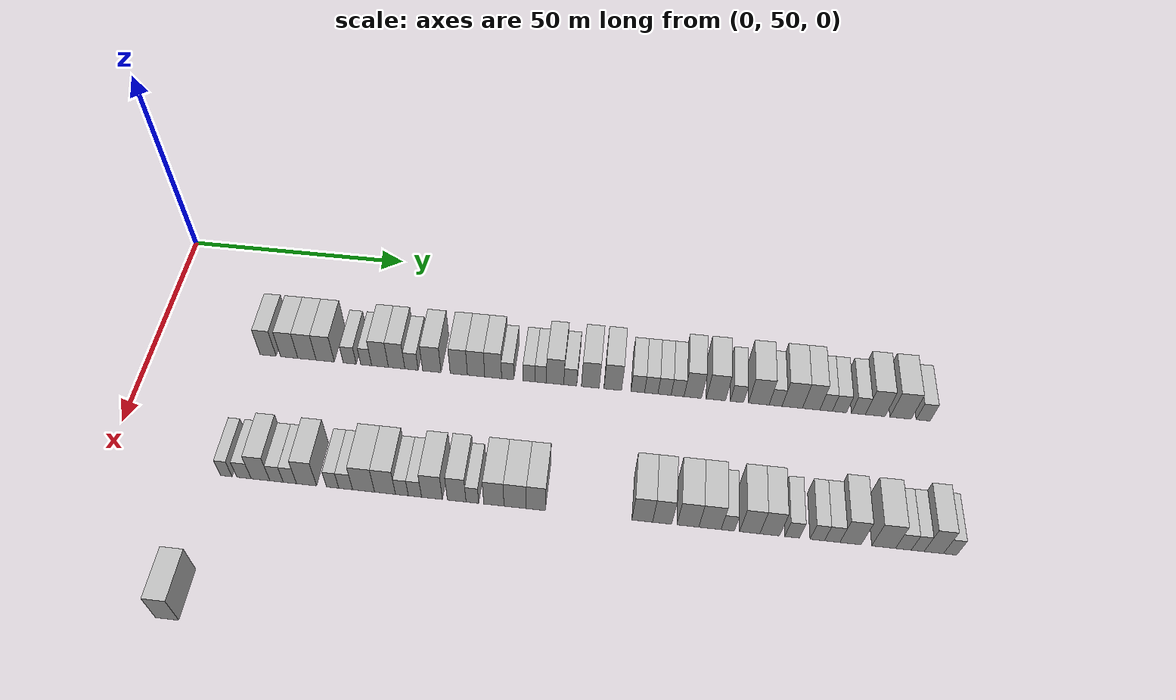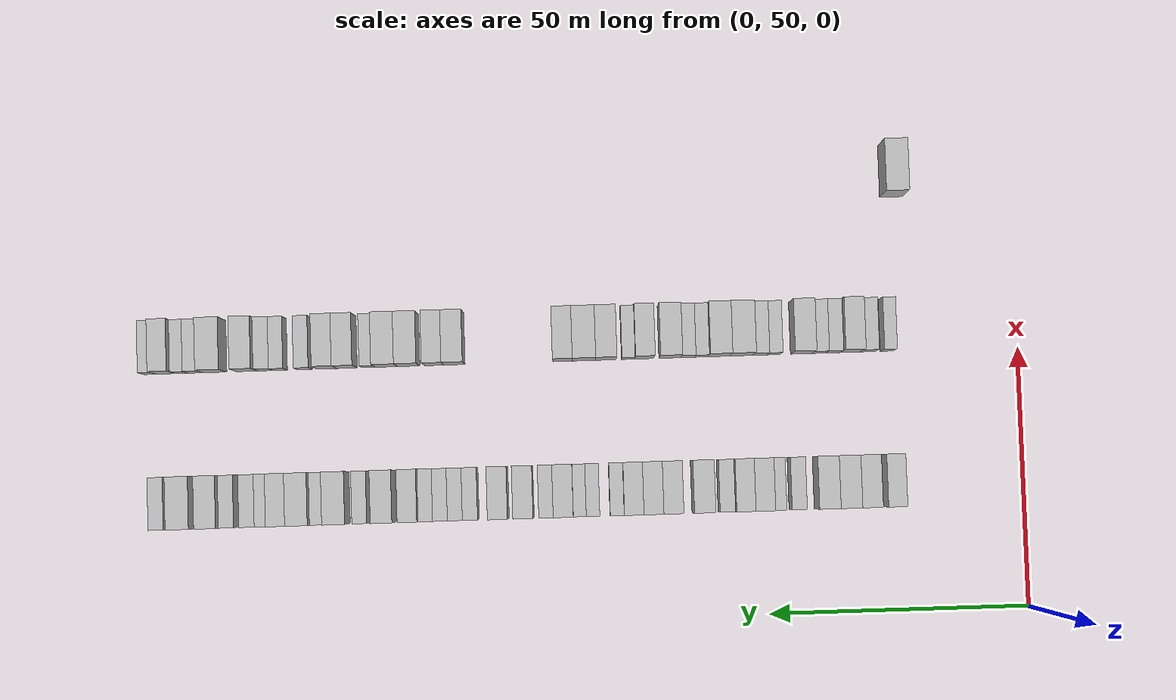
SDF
<sdf version="1.6">
 <world name="default">
  <model name="building_131">
   <static>1</static>
   <pose>25.0000 75.8027 0 0.000000 0.000000 0.000000</pose>
   <link name="link">
    <pose>0 0 4.50 0 0 0</pose>
    <collision name="collision"><geometry><box><size>10.0000 3.6041 9.0000</size></box></geometry></collision>
    <visual name="visual">
     <cast_shadows>0</cast_shadows>
     <geometry><box><size>10.0000 3.6041 9.0000</size></box></geometry>
     <material>
      <script>
       <uri>model://HANNAS_wall/materials/scripts</uri>
       <uri>model://HANNAS_wall/materials/textures</uri>
       <name>vrc/HANNAS_wall</name>
      </script>
     </material>
    </visual>
   </link>
  </model>
  <model name="building_132">
   <static>1</static>
   <pose>25.0000 80.5470 0 0.000000 0.000000 0.000000</pose>
   <link name="link">
    <pose>0 0 4.50 0 0 0</pose>
    <collision name="collision"><geometry><box><size>10.0000 3.8845 9.0000</size></box></geometry></collision>
    <visual name="visual">
     <cast_shadows>0</cast_shadows>
     <geometry><box><size>10.0000 3.8845 9.0000</size></box></geometry>
     <material>
      <script>
       <uri>model://HANNAS_wall/materials/scripts</uri>
       <uri>model://HANNAS_wall/materials/textures</uri>
       <name>vrc/HANNAS_wall</name>
      </script>
     </material>
    </visual>
   </link>
  </model>
  <model name="building_133">
   <static>1</static>
   <pose>25.0000 84.5289 0 0.000000 0.000000 0.000000</pose>
   <link name="link">
    <pose>0 0 4.50 0 0 0</pose>
    <collision name="collision"><geometry><box><size>10.0000 4.0794 9.0000</size></box></geometry></collision>
    <visual name="visual">
     <cast_shadows>0</cast_shadows>
     <geometry><box><size>10.0000 4.0794 9.0000</size></box></geometry>
     <material>
      <script>
       <uri>model://HANNAS_wall/materials/scripts</uri>
       <uri>model://HANNAS_wall/materials/textures</uri>
       <name>vrc/HANNAS_wall</name>
      </script>
     </material>
    </visual>
   </link>
  </model>
  <model name="building_134">
   <static>1</static>
   <pose>25.0000 88.5929 0 0.000000 0.000000 0.000000</pose>
   <link name="link">
    <pose>0 0 4.50 0 0 0</pose>
    <collision name="collision"><geometry><box><size>10.0000 4.0486 9.0000</size></box></geometry></collision>
    <visual name="visual">
     <cast_shadows>0</cast_shadows>
     <geometry><box><size>10.0000 4.0486 9.0000</size></box></geometry>
     <material>
      <script>
       <uri>model://HANNAS_wall/materials/scripts</uri>
       <uri>model://HANNAS_wall/materials/textures</uri>
       <name>vrc/HANNAS_wall</name>
      </script>
     </material>
    </visual>
   </link>
  </model>
  <model name="building_135">
   <static>1</static>
   <pose>25.0000 94.0541 0 0.000000 0.000000 0.000000</pose>
   <link name="link">
    <pose>0 0 3.00 0 0 0</pose>
    <collision name="collision"><geometry><box><size>10.0000 2.8739 6.0000</size></box></geometry></collision>
    <visual name="visual">
     <cast_shadows>0</cast_shadows>
     <geometry><box><size>10.0000 2.8739 6.0000</size></box></geometry>
     <material>
      <script>
       <uri>model://HANNAS_wall/materials/scripts</uri>
       <uri>model://HANNAS_wall/materials/textures</uri>
       <name>vrc/HANNAS_wall</name>
      </script>
     </material>
    </visual>
   </link>
  </model>
  <model name="building_136">
   <static>1</static>
   <pose>25.0000 97.6984 0 0.000000 0.000000 0.000000</pose>
   <link name="link">
    <pose>0 0 3.00 0 0 0</pose>
    <collision name="collision"><geometry><box><size>10.0000 2.4146 6.0000</size></box></geometry></collision>
    <visual name="visual">
     <cast_shadows>0</cast_shadows>
     <geometry><box><size>10.0000 2.4146 6.0000</size></box></geometry>
     <material>
      <script>
       <uri>model://HANNAS_wall/materials/scripts</uri>
       <uri>model://HANNAS_wall/materials/textures</uri>
       <name>vrc/HANNAS_wall</name>
      </script>
     </material>
    </visual>
   </link>
  </model>
  <model name="building_137">
   <static>1</static>
   <pose>25.0000 100.7655 0 0.000000 0.000000 0.000000</pose>
   <link name="link">
    <pose>0 0 4.50 0 0 0</pose>
    <collision name="collision"><geometry><box><size>10.0000 3.7197 9.0000</size></box></geometry></collision>
    <visual name="visual">
     <cast_shadows>0</cast_shadows>
     <geometry><box><size>10.0000 3.7197 9.0000</size></box></geometry>
     <material>
      <script>
       <uri>model://HANNAS_wall/materials/scripts</uri>
       <uri>model://HANNAS_wall/materials/textures</uri>
       <name>vrc/HANNAS_wall</name>
      </script>
     </material>
    </visual>
   </link>
  </model>
  <model name="building_138">
   <static>1</static>
   <pose>25.0000 104.4394 0 0.000000 0.000000 0.000000</pose>
   <link name="link">
    <pose>0 0 4.50 0 0 0</pose>
    <collision name="collision"><geometry><box><size>10.0000 3.6281 9.0000</size></box></geometry></collision>
    <visual name="visual">
     <cast_shadows>0</cast_shadows>
     <geometry><box><size>10.0000 3.6281 9.0000</size></box></geometry>
     <material>
      <script>
       <uri>model://HANNAS_wall/materials/scripts</uri>
       <uri>model://HANNAS_wall/materials/textures</uri>
       <name>vrc/HANNAS_wall</name>
      </script>
     </material>
    </visual>
   </link>
  </model>
  <model name="building_139">
   <static>1</static>
   <pose>25.0000 107.7183 0 0.000000 0.000000 0.000000</pose>
   <link name="link">
    <pose>0 0 3.00 0 0 0</pose>
    <collision name="collision"><geometry><box><size>10.0000 2.9297 6.0000</size></box></geometry></collision>
    <visual name="visual">
     <cast_shadows>0</cast_shadows>
     <geometry><box><size>10.0000 2.9297 6.0000</size></box></geometry>
     <material>
      <script>
       <uri>model://HANNAS_wall/materials/scripts</uri>
       <uri>model://HANNAS_wall/materials/textures</uri>
       <name>vrc/HANNAS_wall</name>
      </script>
     </material>
    </visual>
   </link>
  </model>
  <model name="building_140">
   <static>1</static>
   <pose>25.0000 112.2010 0 0.000000 0.000000 0.000000</pose>
   <link name="link">
    <pose>0 0 4.50 0 0 0</pose>
    <collision name="collision"><geometry><box><size>10.0000 4.0358 9.0000</size></box></geometry></collision>
    <visual name="visual">
     <cast_shadows>0</cast_shadows>
     <geometry><box><size>10.0000 4.0358 9.0000</size></box></geometry>
     <material>
      <script>
       <uri>model://HANNAS_wall/materials/scripts</uri>
       <uri>model://HANNAS_wall/materials/textures</uri>
       <name>vrc/HANNAS_wall</name>
      </script>
     </material>
    </visual>
   </link>
  </model>
  <model name="building_141">
   <static>1</static>
   <pose>25.0000 118.1037 0 0.000000 0.000000 0.000000</pose>
   <link name="link">
    <pose>0 0 4.50 0 0 0</pose>
    <collision name="collision"><geometry><box><size>10.0000 3.7697 9.0000</size></box></geometry></collision>
    <visual name="visual">
     <cast_shadows>0</cast_shadows>
     <geometry><box><size>10.0000 3.7697 9.0000</size></box></geometry>
     <material>
      <script>
       <uri>model://HANNAS_wall/materials/scripts</uri>
       <uri>model://HANNAS_wall/materials/textures</uri>
       <name>vrc/HANNAS_wall</name>
      </script>
     </material>
    </visual>
   </link>
  </model>
  <model name="building_142">
   <static>1</static>
   <pose>25.0000 121.8712 0 0.000000 0.000000 0.000000</pose>
   <link name="link">
    <pose>0 0 4.50 0 0 0</pose>
    <collision name="collision"><geometry><box><size>10.0000 3.7653 9.0000</size></box></geometry></collision>
    <visual name="visual">
     <cast_shadows>0</cast_shadows>
     <geometry><box><size>10.0000 3.7653 9.0000</size></box></geometry>
     <material>
      <script>
       <uri>model://HANNAS_wall/materials/scripts</uri>
       <uri>model://HANNAS_wall/materials/textures</uri>
       <name>vrc/HANNAS_wall</name>
      </script>
     </material>
    </visual>
   </link>
  </model>
  <model name="building_143">
   <static>1</static>
   <pose>25.0000 125.5896 0 0.000000 0.000000 0.000000</pose>
   <link name="link">
    <pose>0 0 4.50 0 0 0</pose>
    <collision name="collision"><geometry><box><size>10.0000 3.6714 9.0000</size></box></geometry></collision>
    <visual name="visual">
     <cast_shadows>0</cast_shadows>
     <geometry><box><size>10.0000 3.6714 9.0000</size></box></geometry>
     <material>
      <script>
       <uri>model://HANNAS_wall/materials/scripts</uri>
       <uri>model://HANNAS_wall/materials/textures</uri>
       <name>vrc/HANNAS_wall</name>
      </script>
     </material>
    </visual>
   </link>
  </model>
  <model name="building_144">
   <static>1</static>
   <pose>25.0000 128.7429 0 0.000000 0.000000 0.000000</pose>
   <link name="link">
    <pose>0 0 3.00 0 0 0</pose>
    <collision name="collision"><geometry><box><size>10.0000 2.6352 6.0000</size></box></geometry></collision>
    <visual name="visual">
     <cast_shadows>0</cast_shadows>
     <geometry><box><size>10.0000 2.6352 6.0000</size></box></geometry>
     <material>
      <script>
       <uri>model://HANNAS_wall/materials/scripts</uri>
       <uri>model://HANNAS_wall/materials/textures</uri>
       <name>vrc/HANNAS_wall</name>
      </script>
     </material>
    </visual>
   </link>
  </model>
  <model name="building_145">
   <static>1</static>
   <pose>25.0000 133.3503 0 0.000000 0.000000 0.000000</pose>
   <link name="link">
    <pose>0 0 3.00 0 0 0</pose>
    <collision name="collision"><geometry><box><size>10.0000 2.5795 6.0000</size></box></geometry></collision>
    <visual name="visual">
     <cast_shadows>0</cast_shadows>
     <geometry><box><size>10.0000 2.5795 6.0000</size></box></geometry>
     <material>
      <script>
       <uri>model://HANNAS_wall/materials/scripts</uri>
       <uri>model://HANNAS_wall/materials/textures</uri>
       <name>vrc/HANNAS_wall</name>
      </script>
     </material>
    </visual>
   </link>
  </model>
  <model name="building_146">
   <static>1</static>
   <pose>25.0000 135.8666 0 0.000000 0.000000 0.000000</pose>
   <link name="link">
    <pose>0 0 3.00 0 0 0</pose>
    <collision name="collision"><geometry><box><size>10.0000 2.4532 6.0000</size></box></geometry></collision>
    <visual name="visual">
     <cast_shadows>0</cast_shadows>
     <geometry><box><size>10.0000 2.4532 6.0000</size></box></geometry>
     <material>
      <script>
       <uri>model://HANNAS_wall/materials/scripts</uri>
       <uri>model://HANNAS_wall/materials/textures</uri>
       <name>vrc/HANNAS_wall</name>
      </script>
     </material>
    </visual>
   </link>
  </model>
  <model name="building_147">
   <static>1</static>
   <pose>25.0000 138.9893 0 0.000000 0.000000 0.000000</pose>
   <link name="link">
    <pose>0 0 4.50 0 0 0</pose>
    <collision name="collision"><geometry><box><size>10.0000 3.7920 9.0000</size></box></geometry></collision>
    <visual name="visual">
     <cast_shadows>0</cast_shadows>
     <geometry><box><size>10.0000 3.7920 9.0000</size></box></geometry>
     <material>
      <script>
       <uri>model://HANNAS_wall/materials/scripts</uri>
       <uri>model://HANNAS_wall/materials/textures</uri>
       <name>vrc/HANNAS_wall</name>
      </script>
     </material>
    </visual>
   </link>
  </model>
  <model name="building_148">
   <static>1</static>
   <pose>25.0000 142.2802 0 0.000000 0.000000 0.000000</pose>
   <link name="link">
    <pose>0 0 3.00 0 0 0</pose>
    <collision name="collision"><geometry><box><size>10.0000 2.7898 6.0000</size></box></geometry></collision>
    <visual name="visual">
     <cast_shadows>0</cast_shadows>
     <geometry><box><size>10.0000 2.7898 6.0000</size></box></geometry>
     <material>
      <script>
       <uri>model://HANNAS_wall/materials/scripts</uri>
       <uri>model://HANNAS_wall/materials/textures</uri>
       <name>vrc/HANNAS_wall</name>
      </script>
     </material>
    </visual>
   </link>
  </model>
  <model name="building_149">
   <static>1</static>
   <pose>25.0000 146.5891 0 0.000000 0.000000 0.000000</pose>
   <link name="link">
    <pose>0 0 4.50 0 0 0</pose>
    <collision name="collision"><geometry><box><size>10.0000 3.8281 9.0000</size></box></geometry></collision>
    <visual name="visual">
     <cast_shadows>0</cast_shadows>
     <geometry><box><size>10.0000 3.8281 9.0000</size></box></geometry>
     <material>
      <script>
       <uri>model://HANNAS_wall/materials/scripts</uri>
       <uri>model://HANNAS_wall/materials/textures</uri>
       <name>vrc/HANNAS_wall</name>
      </script>
     </material>
    </visual>
   </link>
  </model>
  <model name="building_150">
   <static>1</static>
   <pose>25.0000 151.3993 0 0.000000 0.000000 0.000000</pose>
   <link name="link">
    <pose>0 0 4.50 0 0 0</pose>
    <collision name="collision"><geometry><box><size>10.0000 3.7922 9.0000</size></box></geometry></collision>
    <visual name="visual">
     <cast_shadows>0</cast_shadows>
     <geometry><box><size>10.0000 3.7922 9.0000</size></box></geometry>
     <material>
      <script>
       <uri>model://HANNAS_wall/materials/scripts</uri>
       <uri>model://HANNAS_wall/materials/textures</uri>
       <name>vrc/HANNAS_wall</name>
      </script>
     </material>
    </visual>
   </link>
  </model>
  <model name="building_151">
   <static>1</static>
   <pose>25.0000 156.7412 0 0.000000 0.000000 0.000000</pose>
   <link name="link">
    <pose>0 0 3.00 0 0 0</pose>
    <collision name="collision"><geometry><box><size>10.0000 2.8915 6.0000</size></box></geometry></collision>
    <visual name="visual">
     <cast_shadows>0</cast_shadows>
     <geometry><box><size>10.0000 2.8915 6.0000</size></box></geometry>
     <material>
      <script>
       <uri>model://HANNAS_wall/materials/scripts</uri>
       <uri>model://HANNAS_wall/materials/textures</uri>
       <name>vrc/HANNAS_wall</name>
      </script>
     </material>
    </visual>
   </link>
  </model>
  <model name="building_152">
   <static>1</static>
   <pose>25.0000 159.6117 0 0.000000 0.000000 0.000000</pose>
   <link name="link">
    <pose>0 0 3.00 0 0 0</pose>
    <collision name="collision"><geometry><box><size>10.0000 2.8495 6.0000</size></box></geometry></collision>
    <visual name="visual">
     <cast_shadows>0</cast_shadows>
     <geometry><box><size>10.0000 2.8495 6.0000</size></box></geometry>
     <material>
      <script>
       <uri>model://HANNAS_wall/materials/scripts</uri>
       <uri>model://HANNAS_wall/materials/textures</uri>
       <name>vrc/HANNAS_wall</name>
      </script>
     </material>
    </visual>
   </link>
  </model>
  <model name="building_153">
   <static>1</static>
   <pose>25.0000 162.4431 0 0.000000 0.000000 0.000000</pose>
   <link name="link">
    <pose>0 0 3.00 0 0 0</pose>
    <collision name="collision"><geometry><box><size>10.0000 2.8133 6.0000</size></box></geometry></collision>
    <visual name="visual">
     <cast_shadows>0</cast_shadows>
     <geometry><box><size>10.0000 2.8133 6.0000</size></box></geometry>
     <material>
      <script>
       <uri>model://HANNAS_wall/materials/scripts</uri>
       <uri>model://HANNAS_wall/materials/textures</uri>
       <name>vrc/HANNAS_wall</name>
      </script>
     </material>
    </visual>
   </link>
  </model>
  <model name="building_154">
   <static>1</static>
   <pose>25.0000 165.2211 0 0.000000 0.000000 0.000000</pose>
   <link name="link">
    <pose>0 0 3.00 0 0 0</pose>
    <collision name="collision"><geometry><box><size>10.0000 2.7429 6.0000</size></box></geometry></collision>
    <visual name="visual">
     <cast_shadows>0</cast_shadows>
     <geometry><box><size>10.0000 2.7429 6.0000</size></box></geometry>
     <material>
      <script>
       <uri>model://HANNAS_wall/materials/scripts</uri>
       <uri>model://HANNAS_wall/materials/textures</uri>
       <name>vrc/HANNAS_wall</name>
      </script>
     </material>
    </visual>
   </link>
  </model>
  <model name="building_155">
   <static>1</static>
   <pose>25.0000 168.4414 0 0.000000 0.000000 0.000000</pose>
   <link name="link">
    <pose>0 0 4.50 0 0 0</pose>
    <collision name="collision"><geometry><box><size>10.0000 3.6978 9.0000</size></box></geometry></collision>
    <visual name="visual">
     <cast_shadows>0</cast_shadows>
     <geometry><box><size>10.0000 3.6978 9.0000</size></box></geometry>
     <material>
      <script>
       <uri>model://HANNAS_wall/materials/scripts</uri>
       <uri>model://HANNAS_wall/materials/textures</uri>
       <name>vrc/HANNAS_wall</name>
      </script>
     </material>
    </visual>
   </link>
  </model>
  <model name="building_156">
   <static>1</static>
   <pose>25.0000 173.3247 0 0.000000 0.000000 0.000000</pose>
   <link name="link">
    <pose>0 0 4.50 0 0 0</pose>
    <collision name="collision"><geometry><box><size>10.0000 4.0687 9.0000</size></box></geometry></collision>
    <visual name="visual">
     <cast_shadows>0</cast_shadows>
     <geometry><box><size>10.0000 4.0687 9.0000</size></box></geometry>
     <material>
      <script>
       <uri>model://HANNAS_wall/materials/scripts</uri>
       <uri>model://HANNAS_wall/materials/textures</uri>
       <name>vrc/HANNAS_wall</name>
      </script>
     </material>
    </visual>
   </link>
  </model>
  <model name="building_157">
   <static>1</static>
   <pose>25.0000 177.7720 0 0.000000 0.000000 0.000000</pose>
   <link name="link">
    <pose>0 0 3.00 0 0 0</pose>
    <collision name="collision"><geometry><box><size>10.0000 2.8260 6.0000</size></box></geometry></collision>
    <visual name="visual">
     <cast_shadows>0</cast_shadows>
     <geometry><box><size>10.0000 2.8260 6.0000</size></box></geometry>
     <material>
      <script>
       <uri>model://HANNAS_wall/materials/scripts</uri>
       <uri>model://HANNAS_wall/materials/textures</uri>
       <name>vrc/HANNAS_wall</name>
      </script>
     </material>
    </visual>
   </link>
  </model>
  <model name="building_158">
   <static>1</static>
   <pose>25.0000 182.3525 0 0.000000 0.000000 0.000000</pose>
   <link name="link">
    <pose>0 0 4.50 0 0 0</pose>
    <collision name="collision"><geometry><box><size>10.0000 4.3351 9.0000</size></box></geometry></collision>
    <visual name="visual">
     <cast_shadows>0</cast_shadows>
     <geometry><box><size>10.0000 4.3351 9.0000</size></box></geometry>
     <material>
      <script>
       <uri>model://HANNAS_wall/materials/scripts</uri>
       <uri>model://HANNAS_wall/materials/textures</uri>
       <name>vrc/HANNAS_wall</name>
      </script>
     </material>
    </visual>
   </link>
  </model>
  <model name="building_159">
   <static>1</static>
   <pose>25.0000 185.8761 0 0.000000 0.000000 0.000000</pose>
   <link name="link">
    <pose>0 0 3.00 0 0 0</pose>
    <collision name="collision"><geometry><box><size>10.0000 2.7121 6.0000</size></box></geometry></collision>
    <visual name="visual">
     <cast_shadows>0</cast_shadows>
     <geometry><box><size>10.0000 2.7121 6.0000</size></box></geometry>
     <material>
      <script>
       <uri>model://HANNAS_wall/materials/scripts</uri>
       <uri>model://HANNAS_wall/materials/textures</uri>
       <name>vrc/HANNAS_wall</name>
      </script>
     </material>
    </visual>
   </link>
  </model>
  <model name="building_160">
   <static>1</static>
   <pose>25.0000 189.3635 0 0.000000 0.000000 0.000000</pose>
   <link name="link">
    <pose>0 0 4.50 0 0 0</pose>
    <collision name="collision"><geometry><box><size>10.0000 4.2626 9.0000</size></box></geometry></collision>
    <visual name="visual">
     <cast_shadows>0</cast_shadows>
     <geometry><box><size>10.0000 4.2626 9.0000</size></box></geometry>
     <material>
      <script>
       <uri>model://HANNAS_wall/materials/scripts</uri>
       <uri>model://HANNAS_wall/materials/textures</uri>
       <name>vrc/HANNAS_wall</name>
      </script>
     </material>
    </visual>
   </link>
  </model>
  <model name="building_161">
   <static>1</static>
   <pose>25.0000 193.3025 0 0.000000 0.000000 0.000000</pose>
   <link name="link">
    <pose>0 0 4.50 0 0 0</pose>
    <collision name="collision"><geometry><box><size>10.0000 3.6154 9.0000</size></box></geometry></collision>
    <visual name="visual">
     <cast_shadows>0</cast_shadows>
     <geometry><box><size>10.0000 3.6154 9.0000</size></box></geometry>
     <material>
      <script>
       <uri>model://HANNAS_wall/materials/scripts</uri>
       <uri>model://HANNAS_wall/materials/textures</uri>
       <name>vrc/HANNAS_wall</name>
      </script>
     </material>
    </visual>
   </link>
  </model>
  <model name="building_162">
   <static>1</static>
   <pose>25.0000 196.4172 0 0.000000 0.000000 0.000000</pose>
   <link name="link">
    <pose>0 0 3.00 0 0 0</pose>
    <collision name="collision"><geometry><box><size>10.0000 2.6140 6.0000</size></box></geometry></collision>
    <visual name="visual">
     <cast_shadows>0</cast_shadows>
     <geometry><box><size>10.0000 2.6140 6.0000</size></box></geometry>
     <material>
      <script>
       <uri>model://HANNAS_wall/materials/scripts</uri>
       <uri>model://HANNAS_wall/materials/textures</uri>
       <name>vrc/HANNAS_wall</name>
      </script>
     </material>
    </visual>
   </link>
  </model>
  <model name="building_163">
   <static>1</static>
   <pose>25.0000 199.1887 0 0.000000 0.000000 0.000000</pose>
   <link name="link">
    <pose>0 0 3.00 0 0 0</pose>
    <collision name="collision"><geometry><box><size>10.0000 2.9288 6.0000</size></box></geometry></collision>
    <visual name="visual">
     <cast_shadows>0</cast_shadows>
     <geometry><box><size>10.0000 2.9288 6.0000</size></box></geometry>
     <material>
      <script>
       <uri>model://HANNAS_wall/materials/scripts</uri>
       <uri>model://HANNAS_wall/materials/textures</uri>
       <name>vrc/HANNAS_wall</name>
      </script>
     </material>
    </visual>
   </link>
  </model>
  <model name="building_164">
   <static>1</static>
   <pose>25.0000 203.0898 0 0.000000 0.000000 0.000000</pose>
   <link name="link">
    <pose>0 0 3.00 0 0 0</pose>
    <collision name="collision"><geometry><box><size>10.0000 2.8734 6.0000</size></box></geometry></collision>
    <visual name="visual">
     <cast_shadows>0</cast_shadows>
     <geometry><box><size>10.0000 2.8734 6.0000</size></box></geometry>
     <material>
      <script>
       <uri>model://HANNAS_wall/materials/scripts</uri>
       <uri>model://HANNAS_wall/materials/textures</uri>
       <name>vrc/HANNAS_wall</name>
      </script>
     </material>
    </visual>
   </link>
  </model>
  <model name="building_165">
   <static>1</static>
   <pose>25.0000 206.5728 0 0.000000 0.000000 0.000000</pose>
   <link name="link">
    <pose>0 0 4.50 0 0 0</pose>
    <collision name="collision"><geometry><box><size>10.0000 4.0927 9.0000</size></box></geometry></collision>
    <visual name="visual">
     <cast_shadows>0</cast_shadows>
     <geometry><box><size>10.0000 4.0927 9.0000</size></box></geometry>
     <material>
      <script>
       <uri>model://HANNAS_wall/materials/scripts</uri>
       <uri>model://HANNAS_wall/materials/textures</uri>
       <name>vrc/HANNAS_wall</name>
      </script>
     </material>
    </visual>
   </link>
  </model>
  <model name="building_166">
   <static>1</static>
   <pose>25.0000 211.8139 0 0.000000 0.000000 0.000000</pose>
   <link name="link">
    <pose>0 0 4.50 0 0 0</pose>
    <collision name="collision"><geometry><box><size>10.0000 4.3896 9.0000</size></box></geometry></collision>
    <visual name="visual">
     <cast_shadows>0</cast_shadows>
     <geometry><box><size>10.0000 4.3896 9.0000</size></box></geometry>
     <material>
      <script>
       <uri>model://HANNAS_wall/materials/scripts</uri>
       <uri>model://HANNAS_wall/materials/textures</uri>
       <name>vrc/HANNAS_wall</name>
      </script>
     </material>
    </visual>
   </link>
  </model>
  <model name="building_167">
   <static>1</static>
   <pose>25.0000 216.4538 0 0.000000 0.000000 0.000000</pose>
   <link name="link">
    <pose>0 0 3.00 0 0 0</pose>
    <collision name="collision"><geometry><box><size>10.0000 2.8901 6.0000</size></box></geometry></collision>
    <visual name="visual">
     <cast_shadows>0</cast_shadows>
     <geometry><box><size>10.0000 2.8901 6.0000</size></box></geometry>
     <material>
      <script>
       <uri>model://HANNAS_wall/materials/scripts</uri>
       <uri>model://HANNAS_wall/materials/textures</uri>
       <name>vrc/HANNAS_wall</name>
      </script>
     </material>
    </visual>
   </link>
  </model>
  <model name="building_362">
   <static>1</static>
   <pose>55.0000 75.5017 0 0.000000 0.000000 0.000000</pose>
   <link name="link">
    <pose>0 0 3.00 0 0 0</pose>
    <collision name="collision"><geometry><box><size>10.0000 2.4318 6.0000</size></box></geometry></collision>
    <visual name="visual">
     <cast_shadows>0</cast_shadows>
     <geometry><box><size>10.0000 2.4318 6.0000</size></box></geometry>
     <material>
      <script>
       <uri>model://HANNAS_wall/materials/scripts</uri>
       <uri>model://HANNAS_wall/materials/textures</uri>
       <name>vrc/HANNAS_wall</name>
      </script>
     </material>
    </visual>
   </link>
  </model>
  <model name="building_363">
   <static>1</static>
   <pose>55.0000 79.1953 0 0.000000 0.000000 0.000000</pose>
   <link name="link">
    <pose>0 0 3.00 0 0 0</pose>
    <collision name="collision"><geometry><box><size>10.0000 2.9554 6.0000</size></box></geometry></collision>
    <visual name="visual">
     <cast_shadows>0</cast_shadows>
     <geometry><box><size>10.0000 2.9554 6.0000</size></box></geometry>
     <material>
      <script>
       <uri>model://HANNAS_wall/materials/scripts</uri>
       <uri>model://HANNAS_wall/materials/textures</uri>
       <name>vrc/HANNAS_wall</name>
      </script>
     </material>
    </visual>
   </link>
  </model>
  <model name="building_364">
   <static>1</static>
   <pose>55.0000 82.5966 0 0.000000 0.000000 0.000000</pose>
   <link name="link">
    <pose>0 0 4.50 0 0 0</pose>
    <collision name="collision"><geometry><box><size>10.0000 3.8473 9.0000</size></box></geometry></collision>
    <visual name="visual">
     <cast_shadows>0</cast_shadows>
     <geometry><box><size>10.0000 3.8473 9.0000</size></box></geometry>
     <material>
      <script>
       <uri>model://HANNAS_wall/materials/scripts</uri>
       <uri>model://HANNAS_wall/materials/textures</uri>
       <name>vrc/HANNAS_wall</name>
      </script>
     </material>
    </visual>
   </link>
  </model>
  <model name="building_365">
   <static>1</static>
   <pose>55.0000 85.8889 0 0.000000 0.000000 0.000000</pose>
   <link name="link">
    <pose>0 0 3.00 0 0 0</pose>
    <collision name="collision"><geometry><box><size>10.0000 2.7373 6.0000</size></box></geometry></collision>
    <visual name="visual">
     <cast_shadows>0</cast_shadows>
     <geometry><box><size>10.0000 2.7373 6.0000</size></box></geometry>
     <material>
      <script>
       <uri>model://HANNAS_wall/materials/scripts</uri>
       <uri>model://HANNAS_wall/materials/textures</uri>
       <name>vrc/HANNAS_wall</name>
      </script>
     </material>
    </visual>
   </link>
  </model>
  <model name="building_366">
   <static>1</static>
   <pose>55.0000 88.6237 0 0.000000 0.000000 0.000000</pose>
   <link name="link">
    <pose>0 0 3.00 0 0 0</pose>
    <collision name="collision"><geometry><box><size>10.0000 2.7322 6.0000</size></box></geometry></collision>
    <visual name="visual">
     <cast_shadows>0</cast_shadows>
     <geometry><box><size>10.0000 2.7322 6.0000</size></box></geometry>
     <material>
      <script>
       <uri>model://HANNAS_wall/materials/scripts</uri>
       <uri>model://HANNAS_wall/materials/textures</uri>
       <name>vrc/HANNAS_wall</name>
      </script>
     </material>
    </visual>
   </link>
  </model>
  <model name="building_367">
   <static>1</static>
   <pose>55.0000 92.0488 0 0.000000 0.000000 0.000000</pose>
   <link name="link">
    <pose>0 0 4.50 0 0 0</pose>
    <collision name="collision"><geometry><box><size>10.0000 4.1180 9.0000</size></box></geometry></collision>
    <visual name="visual">
     <cast_shadows>0</cast_shadows>
     <geometry><box><size>10.0000 4.1180 9.0000</size></box></geometry>
     <material>
      <script>
       <uri>model://HANNAS_wall/materials/scripts</uri>
       <uri>model://HANNAS_wall/materials/textures</uri>
       <name>vrc/HANNAS_wall</name>
      </script>
     </material>
    </visual>
   </link>
  </model>
  <model name="building_368">
   <static>1</static>
   <pose>55.0000 97.3756 0 0.000000 0.000000 0.000000</pose>
   <link name="link">
    <pose>0 0 3.00 0 0 0</pose>
    <collision name="collision"><geometry><box><size>10.0000 2.5355 6.0000</size></box></geometry></collision>
    <visual name="visual">
     <cast_shadows>0</cast_shadows>
     <geometry><box><size>10.0000 2.5355 6.0000</size></box></geometry>
     <material>
      <script>
       <uri>model://HANNAS_wall/materials/scripts</uri>
       <uri>model://HANNAS_wall/materials/textures</uri>
       <name>vrc/HANNAS_wall</name>
      </script>
     </material>
    </visual>
   </link>
  </model>
  <model name="building_369">
   <static>1</static>
   <pose>55.0000 100.0454 0 0.000000 0.000000 0.000000</pose>
   <link name="link">
    <pose>0 0 3.00 0 0 0</pose>
    <collision name="collision"><geometry><box><size>10.0000 2.8041 6.0000</size></box></geometry></collision>
    <visual name="visual">
     <cast_shadows>0</cast_shadows>
     <geometry><box><size>10.0000 2.8041 6.0000</size></box></geometry>
     <material>
      <script>
       <uri>model://HANNAS_wall/materials/scripts</uri>
       <uri>model://HANNAS_wall/materials/textures</uri>
       <name>vrc/HANNAS_wall</name>
      </script>
     </material>
    </visual>
   </link>
  </model>
  <model name="building_370">
   <static>1</static>
   <pose>55.0000 103.6857 0 0.000000 0.000000 0.000000</pose>
   <link name="link">
    <pose>0 0 4.50 0 0 0</pose>
    <collision name="collision"><geometry><box><size>10.0000 4.4764 9.0000</size></box></geometry></collision>
    <visual name="visual">
     <cast_shadows>0</cast_shadows>
     <geometry><box><size>10.0000 4.4764 9.0000</size></box></geometry>
     <material>
      <script>
       <uri>model://HANNAS_wall/materials/scripts</uri>
       <uri>model://HANNAS_wall/materials/textures</uri>
       <name>vrc/HANNAS_wall</name>
      </script>
     </material>
    </visual>
   </link>
  </model>
  <model name="building_371">
   <static>1</static>
   <pose>55.0000 108.0365 0 0.000000 0.000000 0.000000</pose>
   <link name="link">
    <pose>0 0 4.50 0 0 0</pose>
    <collision name="collision"><geometry><box><size>10.0000 4.2252 9.0000</size></box></geometry></collision>
    <visual name="visual">
     <cast_shadows>0</cast_shadows>
     <geometry><box><size>10.0000 4.2252 9.0000</size></box></geometry>
     <material>
      <script>
       <uri>model://HANNAS_wall/materials/scripts</uri>
       <uri>model://HANNAS_wall/materials/textures</uri>
       <name>vrc/HANNAS_wall</name>
      </script>
     </material>
    </visual>
   </link>
  </model>
  <model name="building_372">
   <static>1</static>
   <pose>55.0000 111.4424 0 0.000000 0.000000 0.000000</pose>
   <link name="link">
    <pose>0 0 3.00 0 0 0</pose>
    <collision name="collision"><geometry><box><size>10.0000 2.5867 6.0000</size></box></geometry></collision>
    <visual name="visual">
     <cast_shadows>0</cast_shadows>
     <geometry><box><size>10.0000 2.5867 6.0000</size></box></geometry>
     <material>
      <script>
       <uri>model://HANNAS_wall/materials/scripts</uri>
       <uri>model://HANNAS_wall/materials/textures</uri>
       <name>vrc/HANNAS_wall</name>
      </script>
     </material>
    </visual>
   </link>
  </model>
  <model name="building_373">
   <static>1</static>
   <pose>55.0000 114.0791 0 0.000000 0.000000 0.000000</pose>
   <link name="link">
    <pose>0 0 3.00 0 0 0</pose>
    <collision name="collision"><geometry><box><size>10.0000 2.6866 6.0000</size></box></geometry></collision>
    <visual name="visual">
     <cast_shadows>0</cast_shadows>
     <geometry><box><size>10.0000 2.6866 6.0000</size></box></geometry>
     <material>
      <script>
       <uri>model://HANNAS_wall/materials/scripts</uri>
       <uri>model://HANNAS_wall/materials/textures</uri>
       <name>vrc/HANNAS_wall</name>
      </script>
     </material>
    </visual>
   </link>
  </model>
  <model name="building_374">
   <static>1</static>
   <pose>55.0000 117.5157 0 0.000000 0.000000 0.000000</pose>
   <link name="link">
    <pose>0 0 4.50 0 0 0</pose>
    <collision name="collision"><geometry><box><size>10.0000 4.1865 9.0000</size></box></geometry></collision>
    <visual name="visual">
     <cast_shadows>0</cast_shadows>
     <geometry><box><size>10.0000 4.1865 9.0000</size></box></geometry>
     <material>
      <script>
       <uri>model://HANNAS_wall/materials/scripts</uri>
       <uri>model://HANNAS_wall/materials/textures</uri>
       <name>vrc/HANNAS_wall</name>
      </script>
     </material>
    </visual>
   </link>
  </model>
  <model name="building_375">
   <static>1</static>
   <pose>55.0000 122.4770 0 0.000000 0.000000 0.000000</pose>
   <link name="link">
    <pose>0 0 4.50 0 0 0</pose>
    <collision name="collision"><geometry><box><size>10.0000 3.7361 9.0000</size></box></geometry></collision>
    <visual name="visual">
     <cast_shadows>0</cast_shadows>
     <geometry><box><size>10.0000 3.7361 9.0000</size></box></geometry>
     <material>
      <script>
       <uri>model://HANNAS_wall/materials/scripts</uri>
       <uri>model://HANNAS_wall/materials/textures</uri>
       <name>vrc/HANNAS_wall</name>
      </script>
     </material>
    </visual>
   </link>
  </model>
  <model name="building_376">
   <static>1</static>
   <pose>55.0000 125.6084 0 0.000000 0.000000 0.000000</pose>
   <link name="link">
    <pose>0 0 3.00 0 0 0</pose>
    <collision name="collision"><geometry><box><size>10.0000 2.5267 6.0000</size></box></geometry></collision>
    <visual name="visual">
     <cast_shadows>0</cast_shadows>
     <geometry><box><size>10.0000 2.5267 6.0000</size></box></geometry>
     <material>
      <script>
       <uri>model://HANNAS_wall/materials/scripts</uri>
       <uri>model://HANNAS_wall/materials/textures</uri>
       <name>vrc/HANNAS_wall</name>
      </script>
     </material>
    </visual>
   </link>
  </model>
  <model name="building_377">
   <static>1</static>
   <pose>55.0000 129.8895 0 0.000000 0.000000 0.000000</pose>
   <link name="link">
    <pose>0 0 4.50 0 0 0</pose>
    <collision name="collision"><geometry><box><size>10.0000 4.0354 9.0000</size></box></geometry></collision>
    <visual name="visual">
     <cast_shadows>0</cast_shadows>
     <geometry><box><size>10.0000 4.0354 9.0000</size></box></geometry>
     <material>
      <script>
       <uri>model://HANNAS_wall/materials/scripts</uri>
       <uri>model://HANNAS_wall/materials/textures</uri>
       <name>vrc/HANNAS_wall</name>
      </script>
     </material>
    </visual>
   </link>
  </model>
  <model name="building_378">
   <static>1</static>
   <pose>55.0000 134.1321 0 0.000000 0.000000 0.000000</pose>
   <link name="link">
    <pose>0 0 4.50 0 0 0</pose>
    <collision name="collision"><geometry><box><size>10.0000 4.4498 9.0000</size></box></geometry></collision>
    <visual name="visual">
     <cast_shadows>0</cast_shadows>
     <geometry><box><size>10.0000 4.4498 9.0000</size></box></geometry>
     <material>
      <script>
       <uri>model://HANNAS_wall/materials/scripts</uri>
       <uri>model://HANNAS_wall/materials/textures</uri>
       <name>vrc/HANNAS_wall</name>
      </script>
     </material>
    </visual>
   </link>
  </model>
  <model name="building_379">
   <static>1</static>
   <pose>55.0000 138.2415 0 0.000000 0.000000 0.000000</pose>
   <link name="link">
    <pose>0 0 4.50 0 0 0</pose>
    <collision name="collision"><geometry><box><size>10.0000 3.7690 9.0000</size></box></geometry></collision>
    <visual name="visual">
     <cast_shadows>0</cast_shadows>
     <geometry><box><size>10.0000 3.7690 9.0000</size></box></geometry>
     <material>
      <script>
       <uri>model://HANNAS_wall/materials/scripts</uri>
       <uri>model://HANNAS_wall/materials/textures</uri>
       <name>vrc/HANNAS_wall</name>
      </script>
     </material>
    </visual>
   </link>
  </model>
  <model name="building_380">
   <static>1</static>
   <pose>55.0000 159.1921 0 0.000000 0.000000 0.000000</pose>
   <link name="link">
    <pose>0 0 4.50 0 0 0</pose>
    <collision name="collision"><geometry><box><size>10.0000 4.0441 9.0000</size></box></geometry></collision>
    <visual name="visual">
     <cast_shadows>0</cast_shadows>
     <geometry><box><size>10.0000 4.0441 9.0000</size></box></geometry>
     <material>
      <script>
       <uri>model://HANNAS_wall/materials/scripts</uri>
       <uri>model://HANNAS_wall/materials/textures</uri>
       <name>vrc/HANNAS_wall</name>
      </script>
     </material>
    </visual>
   </link>
  </model>
  <model name="building_381">
   <static>1</static>
   <pose>55.0000 163.0787 0 0.000000 0.000000 0.000000</pose>
   <link name="link">
    <pose>0 0 4.50 0 0 0</pose>
    <collision name="collision"><geometry><box><size>10.0000 3.7289 9.0000</size></box></geometry></collision>
    <visual name="visual">
     <cast_shadows>0</cast_shadows>
     <geometry><box><size>10.0000 3.7289 9.0000</size></box></geometry>
     <material>
      <script>
       <uri>model://HANNAS_wall/materials/scripts</uri>
       <uri>model://HANNAS_wall/materials/textures</uri>
       <name>vrc/HANNAS_wall</name>
      </script>
     </material>
    </visual>
   </link>
  </model>
  <model name="building_382">
   <static>1</static>
   <pose>55.0000 168.0696 0 0.000000 0.000000 0.000000</pose>
   <link name="link">
    <pose>0 0 4.50 0 0 0</pose>
    <collision name="collision"><geometry><box><size>10.0000 4.2529 9.0000</size></box></geometry></collision>
    <visual name="visual">
     <cast_shadows>0</cast_shadows>
     <geometry><box><size>10.0000 4.2529 9.0000</size></box></geometry>
     <material>
      <script>
       <uri>model://HANNAS_wall/materials/scripts</uri>
       <uri>model://HANNAS_wall/materials/textures</uri>
       <name>vrc/HANNAS_wall</name>
      </script>
     </material>
    </visual>
   </link>
  </model>
  <model name="building_383">
   <static>1</static>
   <pose>55.0000 172.3552 0 0.000000 0.000000 0.000000</pose>
   <link name="link">
    <pose>0 0 4.50 0 0 0</pose>
    <collision name="collision"><geometry><box><size>10.0000 4.3184 9.0000</size></box></geometry></collision>
    <visual name="visual">
     <cast_shadows>0</cast_shadows>
     <geometry><box><size>10.0000 4.3184 9.0000</size></box></geometry>
     <material>
      <script>
       <uri>model://HANNAS_wall/materials/scripts</uri>
       <uri>model://HANNAS_wall/materials/textures</uri>
       <name>vrc/HANNAS_wall</name>
      </script>
     </material>
    </visual>
   </link>
  </model>
  <model name="building_384">
   <static>1</static>
   <pose>55.0000 175.7939 0 0.000000 0.000000 0.000000</pose>
   <link name="link">
    <pose>0 0 3.00 0 0 0</pose>
    <collision name="collision"><geometry><box><size>10.0000 2.5589 6.0000</size></box></geometry></collision>
    <visual name="visual">
     <cast_shadows>0</cast_shadows>
     <geometry><box><size>10.0000 2.5589 6.0000</size></box></geometry>
     <material>
      <script>
       <uri>model://HANNAS_wall/materials/scripts</uri>
       <uri>model://HANNAS_wall/materials/textures</uri>
       <name>vrc/HANNAS_wall</name>
      </script>
     </material>
    </visual>
   </link>
  </model>
  <model name="building_385">
   <static>1</static>
   <pose>55.0000 180.0310 0 0.000000 0.000000 0.000000</pose>
   <link name="link">
    <pose>0 0 4.50 0 0 0</pose>
    <collision name="collision"><geometry><box><size>10.0000 3.9152 9.0000</size></box></geometry></collision>
    <visual name="visual">
     <cast_shadows>0</cast_shadows>
     <geometry><box><size>10.0000 3.9152 9.0000</size></box></geometry>
     <material>
      <script>
       <uri>model://HANNAS_wall/materials/scripts</uri>
       <uri>model://HANNAS_wall/materials/textures</uri>
       <name>vrc/HANNAS_wall</name>
      </script>
     </material>
    </visual>
   </link>
  </model>
  <model name="building_386">
   <static>1</static>
   <pose>55.0000 183.8805 0 0.000000 0.000000 0.000000</pose>
   <link name="link">
    <pose>0 0 4.50 0 0 0</pose>
    <collision name="collision"><geometry><box><size>10.0000 3.7838 9.0000</size></box></geometry></collision>
    <visual name="visual">
     <cast_shadows>0</cast_shadows>
     <geometry><box><size>10.0000 3.7838 9.0000</size></box></geometry>
     <material>
      <script>
       <uri>model://HANNAS_wall/materials/scripts</uri>
       <uri>model://HANNAS_wall/materials/textures</uri>
       <name>vrc/HANNAS_wall</name>
      </script>
     </material>
    </visual>
   </link>
  </model>
  <model name="building_387">
   <static>1</static>
   <pose>55.0000 188.1859 0 0.000000 0.000000 0.000000</pose>
   <link name="link">
    <pose>0 0 3.00 0 0 0</pose>
    <collision name="collision"><geometry><box><size>10.0000 2.8272 6.0000</size></box></geometry></collision>
    <visual name="visual">
     <cast_shadows>0</cast_shadows>
     <geometry><box><size>10.0000 2.8272 6.0000</size></box></geometry>
     <material>
      <script>
       <uri>model://HANNAS_wall/materials/scripts</uri>
       <uri>model://HANNAS_wall/materials/textures</uri>
       <name>vrc/HANNAS_wall</name>
      </script>
     </material>
    </visual>
   </link>
  </model>
  <model name="building_388">
   <static>1</static>
   <pose>55.0000 192.9753 0 0.000000 0.000000 0.000000</pose>
   <link name="link">
    <pose>0 0 3.00 0 0 0</pose>
    <collision name="collision"><geometry><box><size>10.0000 2.7516 6.0000</size></box></geometry></collision>
    <visual name="visual">
     <cast_shadows>0</cast_shadows>
     <geometry><box><size>10.0000 2.7516 6.0000</size></box></geometry>
     <material>
      <script>
       <uri>model://HANNAS_wall/materials/scripts</uri>
       <uri>model://HANNAS_wall/materials/textures</uri>
       <name>vrc/HANNAS_wall</name>
      </script>
     </material>
    </visual>
   </link>
  </model>
  <model name="building_389">
   <static>1</static>
   <pose>55.0000 195.8152 0 0.000000 0.000000 0.000000</pose>
   <link name="link">
    <pose>0 0 3.00 0 0 0</pose>
    <collision name="collision"><geometry><box><size>10.0000 2.9281 6.0000</size></box></geometry></collision>
    <visual name="visual">
     <cast_shadows>0</cast_shadows>
     <geometry><box><size>10.0000 2.9281 6.0000</size></box></geometry>
     <material>
      <script>
       <uri>model://HANNAS_wall/materials/scripts</uri>
       <uri>model://HANNAS_wall/materials/textures</uri>
       <name>vrc/HANNAS_wall</name>
      </script>
     </material>
    </visual>
   </link>
  </model>
  <model name="building_390">
   <static>1</static>
   <pose>55.0000 199.3055 0 0.000000 0.000000 0.000000</pose>
   <link name="link">
    <pose>0 0 4.50 0 0 0</pose>
    <collision name="collision"><geometry><box><size>10.0000 4.0526 9.0000</size></box></geometry></collision>
    <visual name="visual">
     <cast_shadows>0</cast_shadows>
     <geometry><box><size>10.0000 4.0526 9.0000</size></box></geometry>
     <material>
      <script>
       <uri>model://HANNAS_wall/materials/scripts</uri>
       <uri>model://HANNAS_wall/materials/textures</uri>
       <name>vrc/HANNAS_wall</name>
      </script>
     </material>
    </visual>
   </link>
  </model>
  <model name="building_391">
   <static>1</static>
   <pose>55.0000 205.5749 0 0.000000 0.000000 0.000000</pose>
   <link name="link">
    <pose>0 0 4.50 0 0 0</pose>
    <collision name="collision"><geometry><box><size>10.0000 4.4862 9.0000</size></box></geometry></collision>
    <visual name="visual">
     <cast_shadows>0</cast_shadows>
     <geometry><box><size>10.0000 4.4862 9.0000</size></box></geometry>
     <material>
      <script>
       <uri>model://HANNAS_wall/materials/scripts</uri>
       <uri>model://HANNAS_wall/materials/textures</uri>
       <name>vrc/HANNAS_wall</name>
      </script>
     </material>
    </visual>
   </link>
  </model>
  <model name="building_392">
   <static>1</static>
   <pose>55.0000 209.3038 0 0.000000 0.000000 0.000000</pose>
   <link name="link">
    <pose>0 0 3.00 0 0 0</pose>
    <collision name="collision"><geometry><box><size>10.0000 2.9714 6.0000</size></box></geometry></collision>
    <visual name="visual">
     <cast_shadows>0</cast_shadows>
     <geometry><box><size>10.0000 2.9714 6.0000</size></box></geometry>
     <material>
      <script>
       <uri>model://HANNAS_wall/materials/scripts</uri>
       <uri>model://HANNAS_wall/materials/textures</uri>
       <name>vrc/HANNAS_wall</name>
      </script>
     </material>
    </visual>
   </link>
  </model>
  <model name="building_393">
   <static>1</static>
   <pose>55.0000 211.9977 0 0.000000 0.000000 0.000000</pose>
   <link name="link">
    <pose>0 0 3.00 0 0 0</pose>
    <collision name="collision"><geometry><box><size>10.0000 2.4164 6.0000</size></box></geometry></collision>
    <visual name="visual">
     <cast_shadows>0</cast_shadows>
     <geometry><box><size>10.0000 2.4164 6.0000</size></box></geometry>
     <material>
      <script>
       <uri>model://HANNAS_wall/materials/scripts</uri>
       <uri>model://HANNAS_wall/materials/textures</uri>
       <name>vrc/HANNAS_wall</name>
      </script>
     </material>
    </visual>
   </link>
  </model>
  <model name="building_394">
   <static>1</static>
   <pose>55.0000 215.0221 0 0.000000 0.000000 0.000000</pose>
   <link name="link">
    <pose>0 0 4.50 0 0 0</pose>
    <collision name="collision"><geometry><box><size>10.0000 3.6324 9.0000</size></box></geometry></collision>
    <visual name="visual">
     <cast_shadows>0</cast_shadows>
     <geometry><box><size>10.0000 3.6324 9.0000</size></box></geometry>
     <material>
      <script>
       <uri>model://HANNAS_wall/materials/scripts</uri>
       <uri>model://HANNAS_wall/materials/textures</uri>
       <name>vrc/HANNAS_wall</name>
      </script>
     </material>
    </visual>
   </link>
  </model>
  <model name="building_395">
   <static>1</static>
   <pose>55.0000 218.0904 0 0.000000 0.000000 0.000000</pose>
   <link name="link">
    <pose>0 0 3.00 0 0 0</pose>
    <collision name="collision"><geometry><box><size>10.0000 2.5042 6.0000</size></box></geometry></collision>
    <visual name="visual">
     <cast_shadows>0</cast_shadows>
     <geometry><box><size>10.0000 2.5042 6.0000</size></box></geometry>
     <material>
      <script>
       <uri>model://HANNAS_wall/materials/scripts</uri>
       <uri>model://HANNAS_wall/materials/textures</uri>
       <name>vrc/HANNAS_wall</name>
      </script>
     </material>
    </visual>
   </link>
  </model>
  <model name="building_583">
   <static>1</static>
   <pose>85.0000 73.4147 0 0.000000 0.000000 0.000000</pose>
   <link name="link">
    <pose>0 0 4.50 0 0 0</pose>
    <collision name="collision"><geometry><box><size>10.0000 4.4294 9.0000</size></box></geometry></collision>
    <visual name="visual">
     <cast_shadows>0</cast_shadows>
     <geometry><box><size>10.0000 4.4294 9.0000</size></box></geometry>
     <material>
      <script>
       <uri>model://HANNAS_wall/materials/scripts</uri>
       <uri>model://HANNAS_wall/materials/textures</uri>
       <name>vrc/HANNAS_wall</name>
      </script>
     </material>
    </visual>
   </link>
  </model>
 </world>
</sdf>
